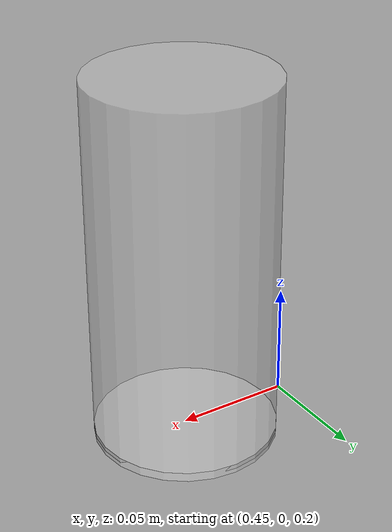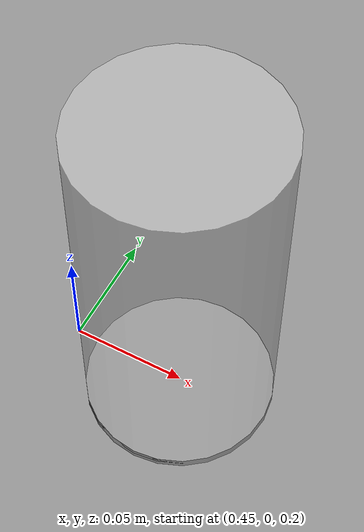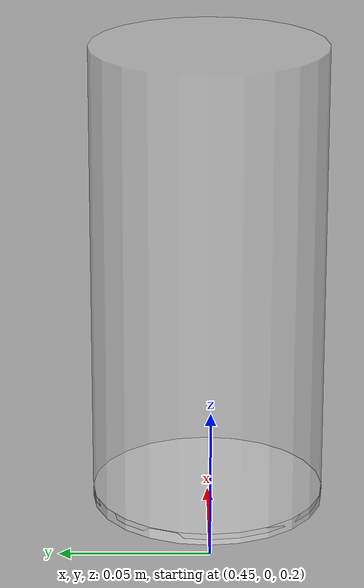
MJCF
<mujoco>
  <asset>
    <material name="cup_material" rgba="0.8 0.8 0.8 1"/>
  </asset>

  <worldbody>
    <!-- Movable cup with free joint -->
    <body name="cup" pos="0.5 0 0.2">
      <!-- Add free joint to make cup movable -->
      <freejoint name="cup_free"/>

      <!-- Add inertial properties first -->
      <inertial pos="0 0 0.04" mass="0.15" diaginertia="0.001 0.001 0.0005"/>

      <!-- Cup base -->
      <geom type="cylinder" size="0.04 0.002" pos="0 0 0" material="cup_material"/>

      <!-- Cup walls (hollow cylinder) -->
      <geom type="cylinder" size="0.04 0.08" pos="0 0 0.08" material="cup_material"
            rgba="0.8 0.8 0.8 0.5"/>
    </body>
  </worldbody>
</mujoco>
